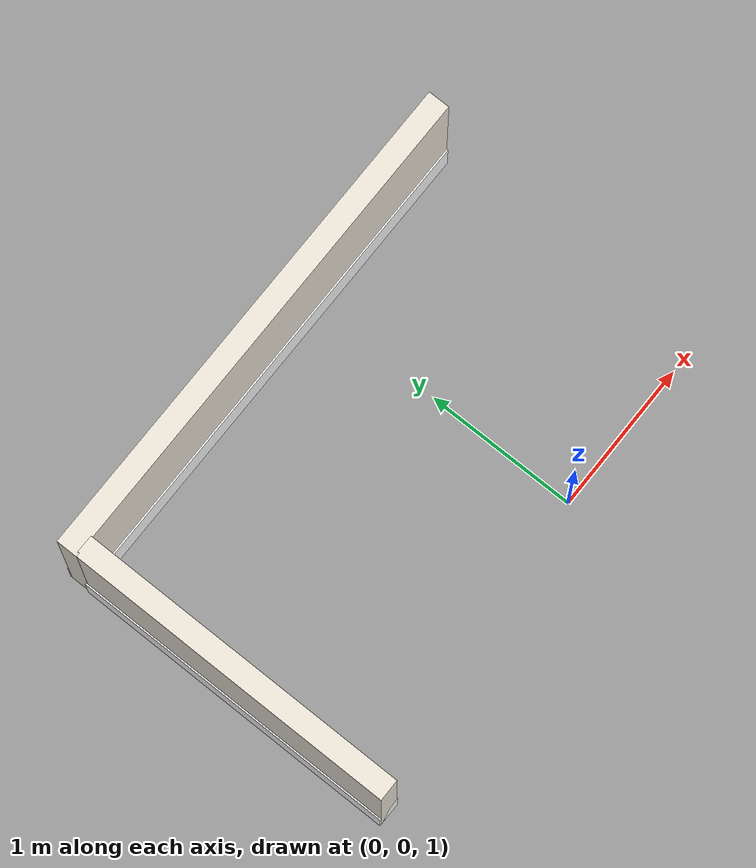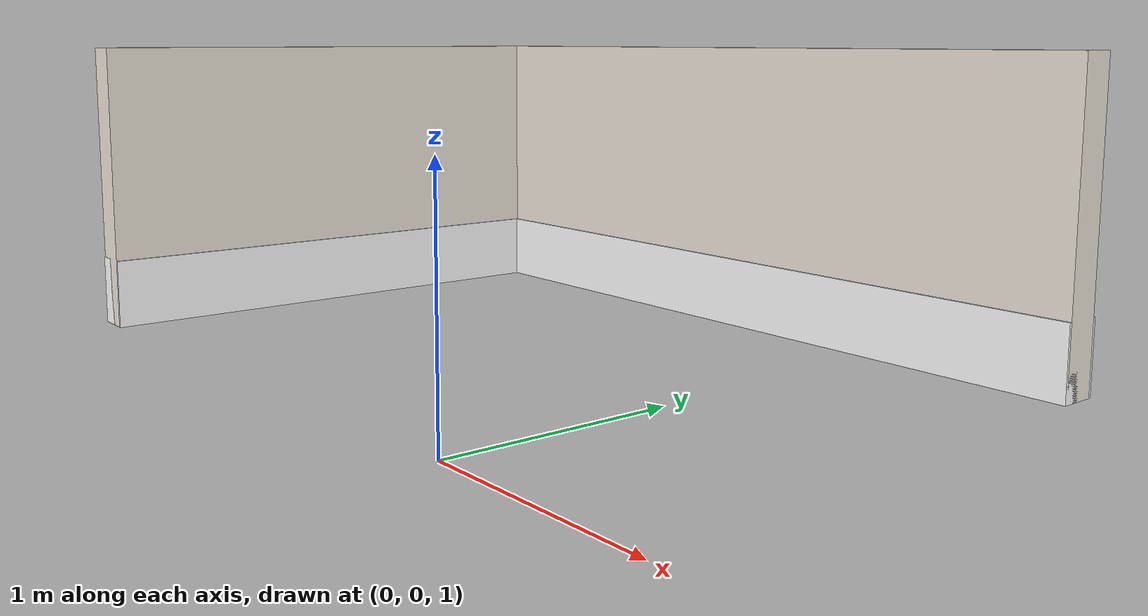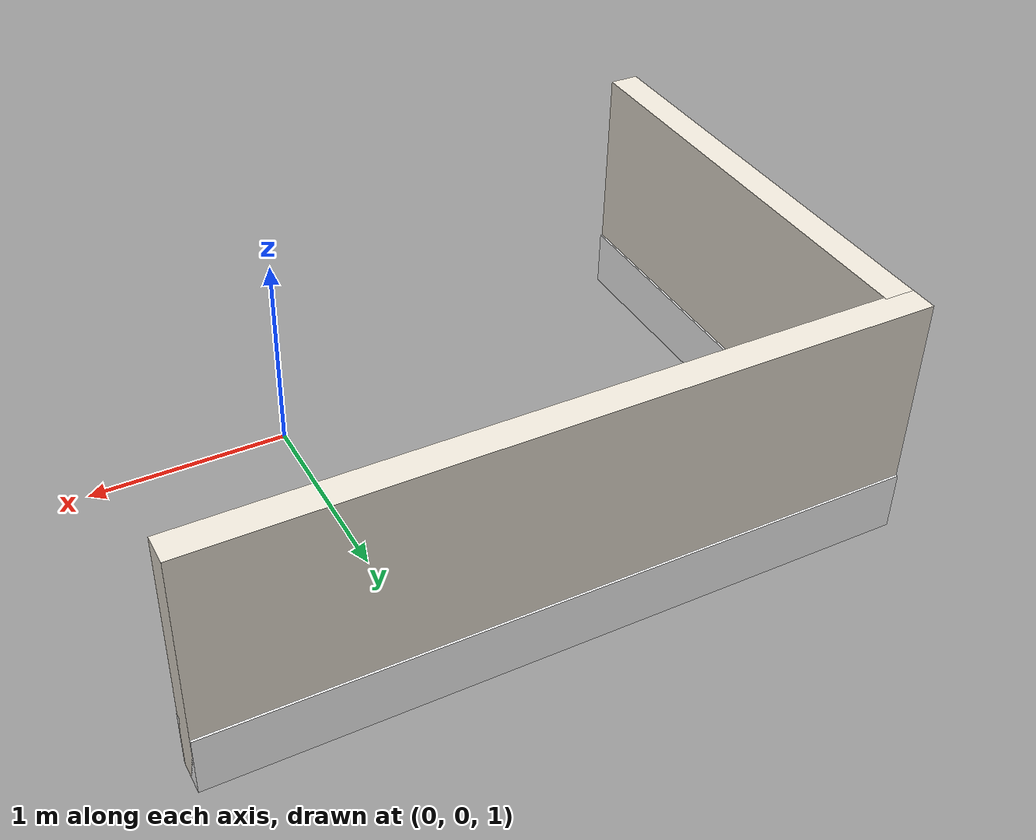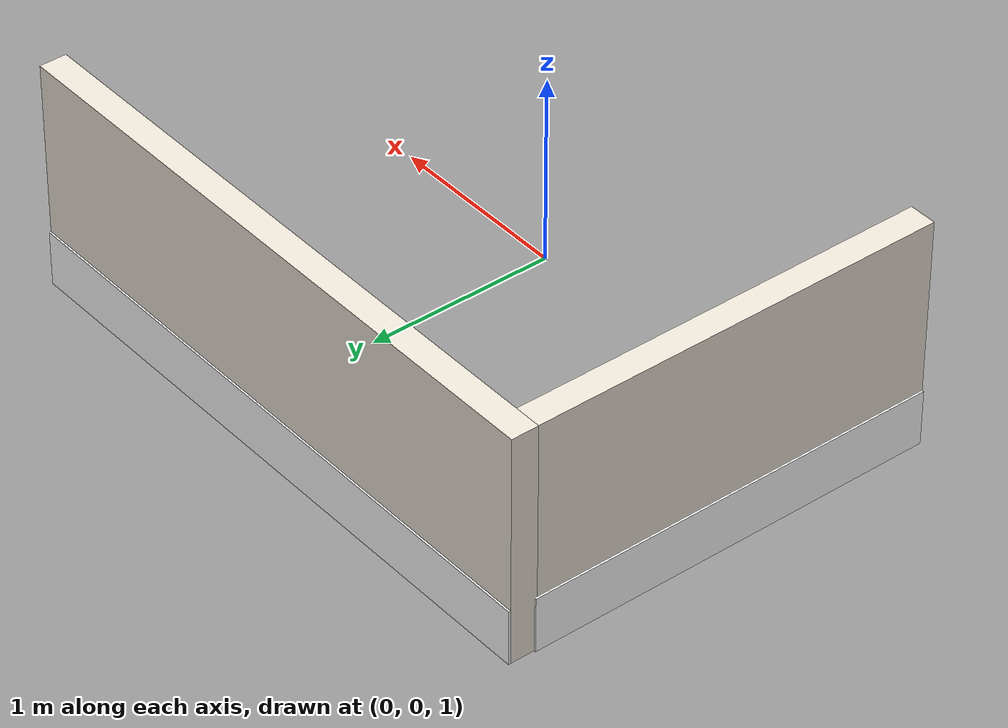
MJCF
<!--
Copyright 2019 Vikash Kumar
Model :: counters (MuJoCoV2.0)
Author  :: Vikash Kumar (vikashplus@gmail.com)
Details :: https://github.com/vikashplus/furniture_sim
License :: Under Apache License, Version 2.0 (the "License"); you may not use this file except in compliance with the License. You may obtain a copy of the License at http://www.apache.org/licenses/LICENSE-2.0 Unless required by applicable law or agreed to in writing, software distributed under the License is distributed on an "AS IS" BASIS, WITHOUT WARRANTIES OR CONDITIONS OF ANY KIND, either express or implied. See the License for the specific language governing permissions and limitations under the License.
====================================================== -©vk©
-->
<mujoco model="backwalls">
    <compiler angle="radian"/>

    <asset>
        <texture name="T_wall_marble" type="cube" height="1" width="1" file="kitchen_textures/stone0.png"/>
        <texture name="T_wall_metal" type="cube" height="1" width="1" file="kitchen_textures/metal0.png"/>

        <material name="wall_white" rgba="1 1 1 1" reflectance="0" shininess="0"/>
        <material name="wall_blue" rgba="0.93 0.9 0.85 1" reflectance="0" shininess="0"/>
        <material name="wall_collision_blue" rgba="0.3 0.3 1.0 0.5" shininess="0" specular="0"/>
    </asset>

    <default>
        <default class="backwall">
            <geom conaffinity="0" contype="0" group="1" material="wall_blue"/>
            <default class="wall_collision">
                <geom conaffinity="1" condim="3" contype="0" group="4" margin="0.001" material="wall_collision_blue"/>
            </default>
        </default>
    </default>

    <worldbody>
        <body name="wallroot" childclass="backwall" pos="-0.4 1.82 1.1225">
            <geom pos="-.11 0.06 .6" size="1.64 0.07 0.6" type="box"/>
            <geom material="wall_white" pos="-0.11 0.06 0.145" size="1.64 0.08 0.145" type="box"/>
        </body>
        <body euler="0 0 1.57" name="sidewall" childclass="backwall" pos="-2.02 0.7 1.1225">
            <geom pos="0.044 .06 0.6" size="1.079 0.07 0.6" type="box"/>
            <geom material="wall_white" pos="0.044 .06 0.145" size="1.079 0.08 0.145" type="box"/>
        </body>
    </worldbody>
</mujoco>
